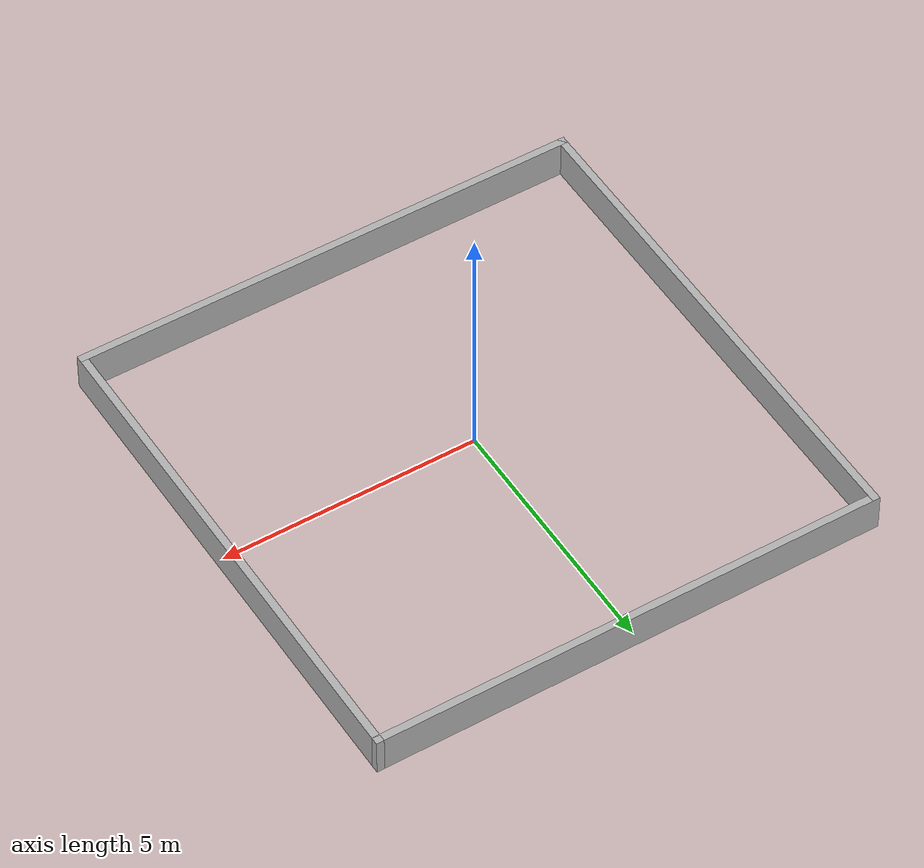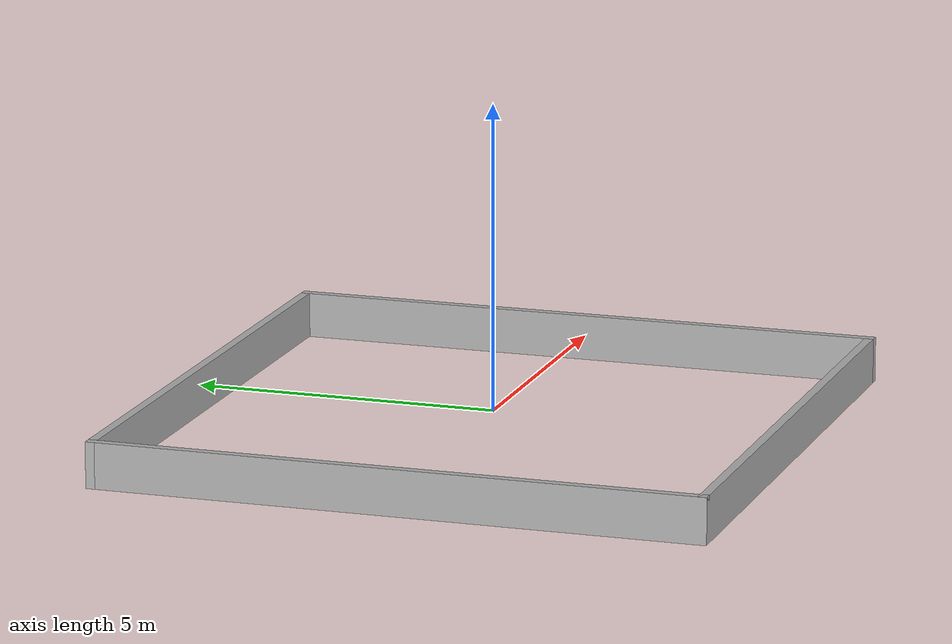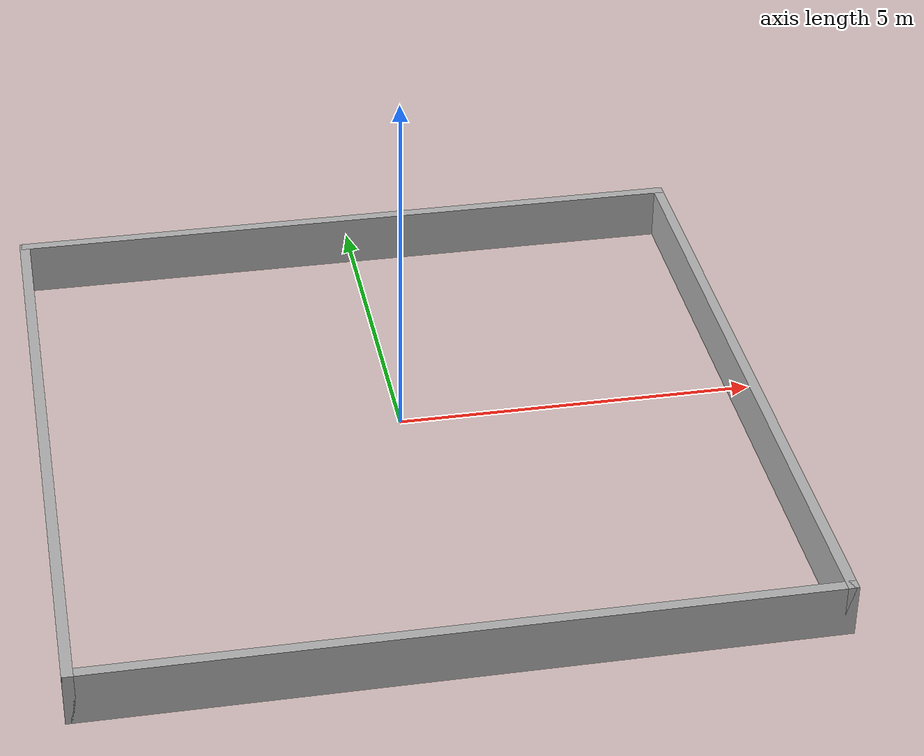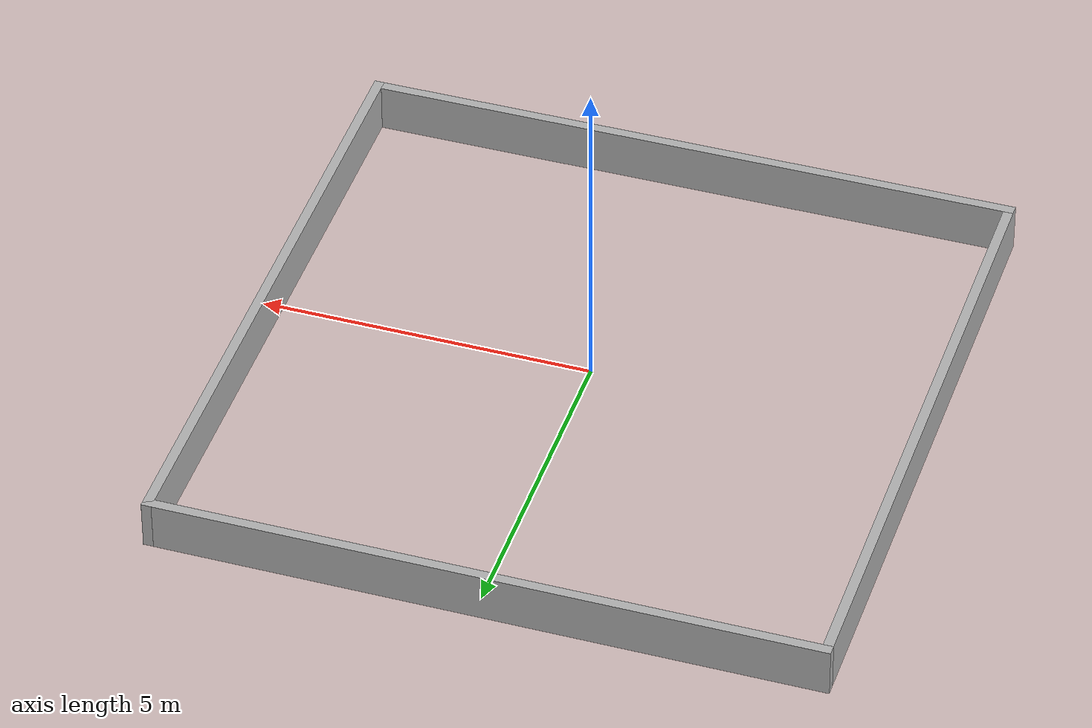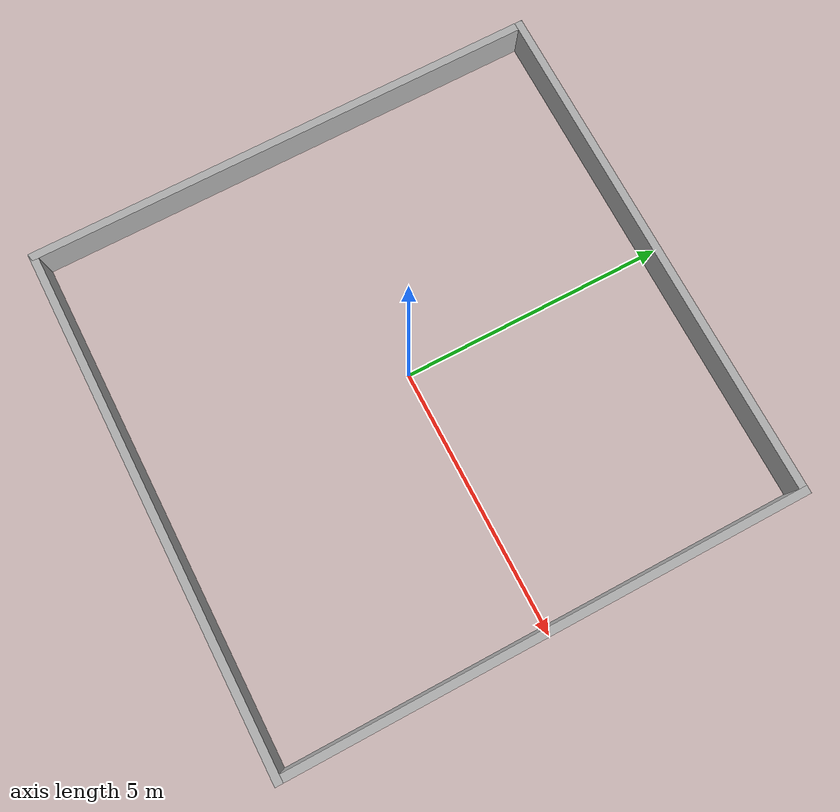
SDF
<?xml version='1.0'?>
<sdf version='1.6'>
<model name='arena'>
      <pose>0.0 0.0 0.0 0 -0 0</pose>
      <link name='Wall_5'>
        <collision name='Wall_5_Collision'>
          <geometry>
            <box>
              <size>10 0.15 0.75</size>
            </box>
          </geometry>
          <pose>0 0 0. 0 -0 0</pose>
          <max_contacts>10</max_contacts>
          <surface>
            <contact>
              <ode/>
            </contact>
            <bounce/>
            <friction>
              <torsional>
                <ode/>
              </torsional>
              <ode/>
            </friction>
          </surface>
        </collision>
        <visual name='Wall_5_Visual'>
          <pose>0 0 0. 0 -0 0</pose>
          <geometry>
            <box>
              <size>10 0.15 0.75</size>
            </box>
          </geometry>
          <material>
            <ambient>0.3 0.3 0.3 1</ambient>
            <diffuse>0.7 0.7 0.7 1</diffuse>
            <specular>0.01 0.01 0.01 1</specular>
          </material>
          <meta>
            <layer>0</layer>
          </meta>
        </visual>
        <pose>0 -4.925 0 0 -0 0</pose>
        <self_collide>false</self_collide>
        <enable_wind>false</enable_wind>
        <kinematic>false</kinematic>
        <inertial>
          <pose>0 0 0 0 -0 0</pose>
          <mass>1</mass>
          <inertia>
            <ixx>1</ixx>
            <ixy>0</ixy>
            <ixz>0</ixz>
            <iyy>1</iyy>
            <iyz>0</iyz>
            <izz>1</izz>
          </inertia>
        </inertial>
      </link>
      <link name='Wall_6'>
        <collision name='Wall_6_Collision'>
          <geometry>
            <box>
              <size>10 0.15 0.75</size>
            </box>
          </geometry>
          <pose>0 0 0.0 0 -0 0</pose>
          <max_contacts>10</max_contacts>
          <surface>
            <contact>
              <ode/>
            </contact>
            <bounce/>
            <friction>
              <torsional>
                <ode/>
              </torsional>
              <ode/>
            </friction>
          </surface>
        </collision>
        <visual name='Wall_6_Visual'>
          <pose>0 0 0.0 0 -0 0</pose>
          <geometry>
            <box>
              <size>10 0.15 0.75</size>
            </box>
          </geometry>
          <material>
            <ambient>0.3 0.3 0.3 1</ambient>
            <diffuse>0.7 0.7 0.7 1</diffuse>
            <specular>0.01 0.01 0.01 1</specular>
          </material>
          <meta>
            <layer>0</layer>
          </meta>
        </visual>
        <pose>4.925 0 0 0 -0 1.5708</pose>
        <self_collide>false</self_collide>
        <enable_wind>false</enable_wind>
        <kinematic>false</kinematic>
        <inertial>
          <pose>0 0 0 0 -0 0</pose>
          <mass>1</mass>
          <inertia>
            <ixx>1</ixx>
            <ixy>0</ixy>
            <ixz>0</ixz>
            <iyy>1</iyy>
            <iyz>0</iyz>
            <izz>1</izz>
          </inertia>
        </inertial>
      </link>
      <link name='Wall_7'>
        <collision name='Wall_7_Collision'>
          <geometry>
            <box>
              <size>10 0.15 0.75</size>
            </box>
          </geometry>
          <pose>0 0 0.0 0 -0 0</pose>
          <max_contacts>10</max_contacts>
          <surface>
            <contact>
              <ode/>
            </contact>
            <bounce/>
            <friction>
              <torsional>
                <ode/>
              </torsional>
              <ode/>
            </friction>
          </surface>
        </collision>
        <visual name='Wall_7_Visual'>
          <pose>0 0 0.0 0 -0 0</pose>
          <geometry>
            <box>
              <size>10 0.15 0.75</size>
            </box>
          </geometry>
          <material>
            <ambient>0.3 0.3 0.3 1</ambient>
            <diffuse>0.7 0.7 0.7 1</diffuse>
            <specular>0.01 0.01 0.01 1</specular>
          </material>
          <meta>
            <layer>0</layer>
          </meta>
        </visual>
        <pose>0 4.925 0 0 -0 3.14159</pose>
        <self_collide>false</self_collide>
        <enable_wind>false</enable_wind>
        <kinematic>false</kinematic>
        <inertial>
          <pose>0 0 0 0 -0 0</pose>
          <mass>1</mass>
          <inertia>
            <ixx>1</ixx>
            <ixy>0</ixy>
            <ixz>0</ixz>
            <iyy>1</iyy>
            <iyz>0</iyz>
            <izz>1</izz>
          </inertia>
        </inertial>
      </link>
      <link name='Wall_8'>
        <collision name='Wall_8_Collision'>
          <geometry>
            <box>
              <size>10 0.15 0.75</size>
            </box>
          </geometry>
          <pose>0 0 0.0 0 -0 0</pose>
          <max_contacts>10</max_contacts>
          <surface>
            <contact>
              <ode/>
            </contact>
            <bounce/>
            <friction>
              <torsional>
                <ode/>
              </torsional>
              <ode/>
            </friction>
          </surface>
        </collision>
        <visual name='Wall_8_Visual'>
          <pose>0 0 0.0 0 -0 0</pose>
          <geometry>
            <box>
              <size>10 0.15 0.75</size>
            </box>
          </geometry>
          <material>
            <ambient>0.3 0.3 0.3 1</ambient>
            <diffuse>0.7 0.7 0.7 1</diffuse>
            <specular>0.01 0.01 0.01 1</specular>
          </material>
          <meta>
            <layer>0</layer>
          </meta>
        </visual>
        <pose>-4.925 0 0 0 0 -1.5708</pose>
        <self_collide>false</self_collide>
        <enable_wind>false</enable_wind>
        <kinematic>false</kinematic>
        <inertial>
          <pose>0 0 0 0 -0 0</pose>
          <mass>1</mass>
          <inertia>
            <ixx>1</ixx>
            <ixy>0</ixy>
            <ixz>0</ixz>
            <iyy>1</iyy>
            <iyz>0</iyz>
            <izz>1</izz>
          </inertia>
        </inertial>
      </link>
      <static>true</static>
      <self_collide>false</self_collide>
  </model>
</sdf>
